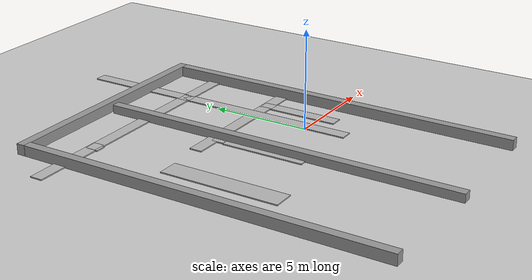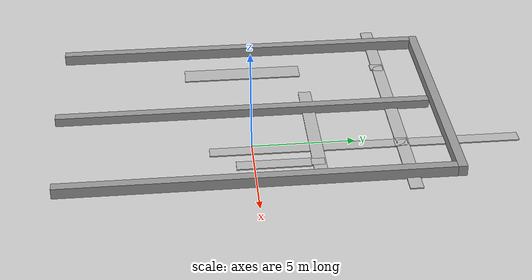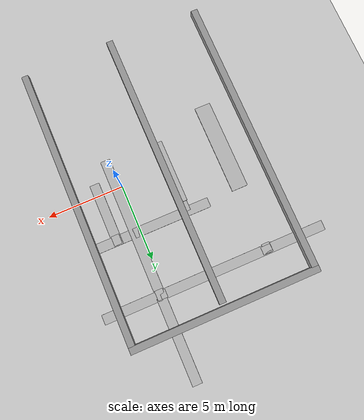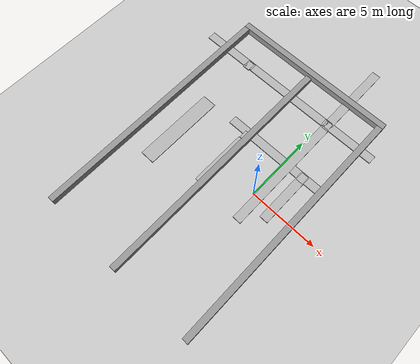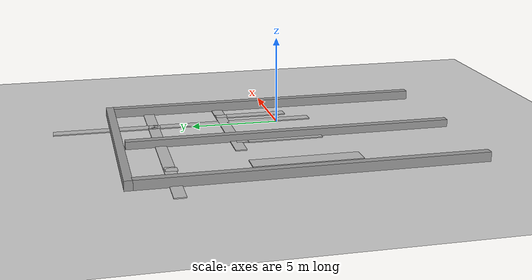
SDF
<sdf version="1.7">
 <world name="default">
  <model name="ground_plane">
   <static>1</static>
   <link name="link">
    <collision name="collision">
     <geometry><plane><normal>0 0 1</normal><size>100 100</size></plane></geometry>
     <surface>
      <contact><collide_bitmask>65535</collide_bitmask></contact>
      <friction><ode><mu>100</mu><mu2>50</mu2></ode></friction>
     </surface>
    </collision>
    <visual name="visual">
     <cast_shadows>0</cast_shadows>
     <geometry><plane><normal>0 0 1</normal><size>100 100</size></plane></geometry>
     <material>
      <script><uri>file://media/materials/scripts/gazebo.material</uri><name>Gazebo/Grey</name></script>
     </material>
    </visual>
   </link>
  </model>
  <model name="unit_box_wall">
   <link name="unit_box::link">
    <inertial>
     <mass>1</mass>
     <inertia>
      <ixx>0.166667</ixx>
      <ixy>0</ixy>
      <ixz>0</ixz>
      <iyy>0.166667</iyy>
      <iyz>0</iyz>
      <izz>0.166667</izz>
     </inertia>
    </inertial>
    <visual name="visual">
     <geometry><box><size>0.446113 18.5982 1</size></box></geometry>
     <material>
      <script><name>Gazebo/Grey</name><uri>file://media/materials/scripts/gazebo.material</uri></script>
      <shader type="pixel"/>
     </material>
    </visual>
    <collision name="collision">
     <geometry><box><size>0.446113 18.5982 1</size></box></geometry>
     <surface>
      <friction>
       <ode><mu>1</mu><mu2>1</mu2><fdir1>0 0 0</fdir1><slip1>0</slip1><slip2>0</slip2></ode>
       <torsional>
        <coefficient>1</coefficient>
        <patch_radius>0</patch_radius>
        <surface_radius>0</surface_radius>
        <use_patch_radius>1</use_patch_radius>
        <ode><slip>0</slip></ode>
       </torsional>
      </friction>
      <bounce><restitution_coefficient>0</restitution_coefficient><threshold>1e+06</threshold></bounce>
      <contact>
       <collide_without_contact>0</collide_without_contact>
       <collide_without_contact_bitmask>1</collide_without_contact_bitmask>
       <collide_bitmask>1</collide_bitmask>
       <ode>
        <soft_cfm>0</soft_cfm>
        <soft_erp>0.2</soft_erp>
        <kp>1e+13</kp>
        <kd>1</kd>
        <max_vel>0.01</max_vel>
        <min_depth>0</min_depth>
       </ode>
       <bullet>
        <split_impulse>1</split_impulse>
        <split_impulse_penetration_threshold>-0.01</split_impulse_penetration_threshold>
        <soft_cfm>0</soft_cfm>
        <soft_erp>0.2</soft_erp>
        <kp>1e+13</kp>
        <kd>1</kd>
       </bullet>
      </contact>
     </surface>
    </collision>
   </link>
   <static>1</static>
   <allow_auto_disable>0</allow_auto_disable>
   <pose>-9.02597 0.034785 0 0 -0 0</pose>
  </model>
  <model name="unit_box_wall_clone">
   <link name="unit_box::link">
    <inertial>
     <mass>1</mass>
     <inertia>
      <ixx>0.166667</ixx>
      <ixy>0</ixy>
      <ixz>0</ixz>
      <iyy>0.166667</iyy>
      <iyz>0</iyz>
      <izz>0.166667</izz>
     </inertia>
    </inertial>
    <visual name="visual">
     <geometry><box><size>0.446113 18.5982 1</size></box></geometry>
     <material>
      <script><name>Gazebo/Grey</name><uri>file://media/materials/scripts/gazebo.material</uri></script>
      <shader type="pixel"/>
     </material>
    </visual>
    <collision name="collision">
     <geometry><box><size>0.446113 18.5982 1</size></box></geometry>
     <surface>
      <friction>
       <ode><mu>1</mu><mu2>1</mu2><fdir1>0 0 0</fdir1><slip1>0</slip1><slip2>0</slip2></ode>
       <torsional>
        <coefficient>1</coefficient>
        <patch_radius>0</patch_radius>
        <surface_radius>0</surface_radius>
        <use_patch_radius>1</use_patch_radius>
        <ode><slip>0</slip></ode>
       </torsional>
      </friction>
      <bounce><restitution_coefficient>0</restitution_coefficient><threshold>1e+06</threshold></bounce>
      <contact>
       <collide_without_contact>0</collide_without_contact>
       <collide_without_contact_bitmask>1</collide_without_contact_bitmask>
       <collide_bitmask>1</collide_bitmask>
       <ode>
        <soft_cfm>0</soft_cfm>
        <soft_erp>0.2</soft_erp>
        <kp>1e+13</kp>
        <kd>1</kd>
        <max_vel>0.01</max_vel>
        <min_depth>0</min_depth>
       </ode>
       <bullet>
        <split_impulse>1</split_impulse>
        <split_impulse_penetration_threshold>-0.01</split_impulse_penetration_threshold>
        <soft_cfm>0</soft_cfm>
        <soft_erp>0.2</soft_erp>
        <kp>1e+13</kp>
        <kd>1</kd>
       </bullet>
      </contact>
     </surface>
    </collision>
   </link>
   <static>1</static>
   <allow_auto_disable>0</allow_auto_disable>
   <pose>3.13218 0.00569 0 0 -0 0</pose>
  </model>
  <model name="unit_box_wall_clone_0_clone">
   <link name="unit_box::link">
    <inertial>
     <mass>1</mass>
     <inertia>
      <ixx>0.166667</ixx>
      <ixy>0</ixy>
      <ixz>0</ixz>
      <iyy>0.166667</iyy>
      <iyz>0</iyz>
      <izz>0.166667</izz>
     </inertia>
    </inertial>
    <visual name="visual">
     <geometry><box><size>0.446113 12.605 1</size></box></geometry>
     <material>
      <script><name>Gazebo/Grey</name><uri>file://media/materials/scripts/gazebo.material</uri></script>
      <shader type="pixel"/>
     </material>
    </visual>
    <collision name="collision">
     <geometry><box><size>0.446113 12.605 1</size></box></geometry>
     <surface>
      <friction>
       <ode><mu>1</mu><mu2>1</mu2><fdir1>0 0 0</fdir1><slip1>0</slip1><slip2>0</slip2></ode>
       <torsional>
        <coefficient>1</coefficient>
        <patch_radius>0</patch_radius>
        <surface_radius>0</surface_radius>
        <use_patch_radius>1</use_patch_radius>
        <ode><slip>0</slip></ode>
       </torsional>
      </friction>
      <bounce><restitution_coefficient>0</restitution_coefficient><threshold>1e+06</threshold></bounce>
      <contact>
       <collide_without_contact>0</collide_without_contact>
       <collide_without_contact_bitmask>1</collide_without_contact_bitmask>
       <collide_bitmask>1</collide_bitmask>
       <ode>
        <soft_cfm>0</soft_cfm>
        <soft_erp>0.2</soft_erp>
        <kp>1e+13</kp>
        <kd>1</kd>
        <max_vel>0.01</max_vel>
        <min_depth>0</min_depth>
       </ode>
       <bullet>
        <split_impulse>1</split_impulse>
        <split_impulse_penetration_threshold>-0.01</split_impulse_penetration_threshold>
        <soft_cfm>0</soft_cfm>
        <soft_erp>0.2</soft_erp>
        <kp>1e+13</kp>
        <kd>1</kd>
       </bullet>
      </contact>
     </surface>
    </collision>
   </link>
   <static>1</static>
   <allow_auto_disable>0</allow_auto_disable>
   <pose>-2.94746 9.5173 0 0 0 -1.57124</pose>
  </model>
  <model name="unit_box_wall_0">
   <link name="unit_box::link">
    <inertial>
     <mass>1</mass>
     <inertia>
      <ixx>0.166667</ixx>
      <ixy>0</ixy>
      <ixz>0</ixz>
      <iyy>0.166667</iyy>
      <iyz>0</iyz>
      <izz>0.166667</izz>
     </inertia>
    </inertial>
    <visual name="visual">
     <geometry><box><size>0.446116 18.5982 0.999999</size></box></geometry>
     <material>
      <script><name>Gazebo/Grey</name><uri>file://media/materials/scripts/gazebo.material</uri></script>
      <shader type="pixel"/>
     </material>
    </visual>
    <collision name="collision">
     <geometry><box><size>0.446116 18.5982 0.999999</size></box></geometry>
     <surface>
      <friction>
       <ode><mu>1</mu><mu2>1</mu2><fdir1>0 0 0</fdir1><slip1>0</slip1><slip2>0</slip2></ode>
       <torsional>
        <coefficient>1</coefficient>
        <patch_radius>0</patch_radius>
        <surface_radius>0</surface_radius>
        <use_patch_radius>1</use_patch_radius>
        <ode><slip>0</slip></ode>
       </torsional>
      </friction>
      <bounce><restitution_coefficient>0</restitution_coefficient><threshold>1e+06</threshold></bounce>
      <contact>
       <collide_without_contact>0</collide_without_contact>
       <collide_without_contact_bitmask>1</collide_without_contact_bitmask>
       <collide_bitmask>1</collide_bitmask>
       <ode>
        <soft_cfm>0</soft_cfm>
        <soft_erp>0.2</soft_erp>
        <kp>1e+13</kp>
        <kd>1</kd>
        <max_vel>0.01</max_vel>
        <min_depth>0</min_depth>
       </ode>
       <bullet>
        <split_impulse>1</split_impulse>
        <split_impulse_penetration_threshold>-0.01</split_impulse_penetration_threshold>
        <soft_cfm>0</soft_cfm>
        <soft_erp>0.2</soft_erp>
        <kp>1e+13</kp>
        <kd>1</kd>
       </bullet>
      </contact>
     </surface>
    </collision>
   </link>
   <static>1</static>
   <allow_auto_disable>0</allow_auto_disable>
   <pose>-2.93005 -0.154884 -0.095815 0 -0 0</pose>
  </model>
  <model name="wallx">
   <link name="unit_box::link">
    <inertial>
     <mass>0.360824</mass>
     <inertia>
      <ixx>1.11244</ixx>
      <ixy>0</ixy>
      <ixz>0</ixz>
      <iyy>0.0643516</iyy>
      <iyz>0</iyz>
      <izz>1.11666</izz>
     </inertia>
    </inertial>
    <visual name="visual">
     <geometry><box><size>1.06778 5.99974 1</size></box></geometry>
     <material>
      <script>
       <uri>model://wallx/materials/scripts</uri>
       <uri>model://wallx/materials/textures/</uri>
       <name>sofaMat/Diffuse</name>
      </script>
      <shader type="pixel"/>
     </material>
    </visual>
    <collision name="collision">
     <geometry><box><size>1.06778 5.99974 1</size></box></geometry>
     <surface>
      <friction>
       <ode><mu>1</mu><mu2>1</mu2><fdir1>0 0 0</fdir1><slip1>0</slip1><slip2>0</slip2></ode>
       <torsional>
        <coefficient>1</coefficient>
        <patch_radius>0</patch_radius>
        <surface_radius>0</surface_radius>
        <use_patch_radius>1</use_patch_radius>
        <ode><slip>0</slip></ode>
       </torsional>
      </friction>
      <bounce><restitution_coefficient>0</restitution_coefficient><threshold>1e+06</threshold></bounce>
      <contact>
       <collide_without_contact>0</collide_without_contact>
       <collide_without_contact_bitmask>1</collide_without_contact_bitmask>
       <collide_bitmask>1</collide_bitmask>
       <ode>
        <soft_cfm>0</soft_cfm>
        <soft_erp>0.2</soft_erp>
        <kp>1e+13</kp>
        <kd>1</kd>
        <max_vel>0.01</max_vel>
        <min_depth>0</min_depth>
       </ode>
       <bullet>
        <split_impulse>1</split_impulse>
        <split_impulse_penetration_threshold>-0.01</split_impulse_penetration_threshold>
        <soft_cfm>0</soft_cfm>
        <soft_erp>0.2</soft_erp>
        <kp>1e+13</kp>
        <kd>1</kd>
       </bullet>
      </contact>
     </surface>
    </collision>
   </link>
   <static>1</static>
   <allow_auto_disable>0</allow_auto_disable>
   <pose>-6.89945 0.027812 -0.470978 0 -0 0</pose>
  </model>
  <model name="wallx_clone">
   <link name="unit_box::link">
    <inertial>
     <mass>0.360824</mass>
     <inertia>
      <ixx>1.11244</ixx>
      <ixy>0</ixy>
      <ixz>0</ixz>
      <iyy>0.0643516</iyy>
      <iyz>0</iyz>
      <izz>1.11666</izz>
     </inertia>
    </inertial>
    <visual name="visual">
     <geometry><box><size>0.636041 14.9462 1</size></box></geometry>
     <material>
      <script>
       <uri>model://wallx/materials/scripts</uri>
       <uri>model://wallx/materials/textures/</uri>
       <name>sofaMat/Diffuse</name>
      </script>
      <shader type="pixel"/>
     </material>
    </visual>
    <collision name="collision">
     <geometry><box><size>0.636041 14.9462 1</size></box></geometry>
     <surface>
      <friction>
       <ode><mu>1</mu><mu2>1</mu2><fdir1>0 0 0</fdir1><slip1>0</slip1><slip2>0</slip2></ode>
       <torsional>
        <coefficient>1</coefficient>
        <patch_radius>0</patch_radius>
        <surface_radius>0</surface_radius>
        <use_patch_radius>1</use_patch_radius>
        <ode><slip>0</slip></ode>
       </torsional>
      </friction>
      <bounce><restitution_coefficient>0</restitution_coefficient><threshold>1e+06</threshold></bounce>
      <contact>
       <collide_without_contact>0</collide_without_contact>
       <collide_without_contact_bitmask>1</collide_without_contact_bitmask>
       <collide_bitmask>1</collide_bitmask>
       <ode>
        <soft_cfm>0</soft_cfm>
        <soft_erp>0.2</soft_erp>
        <kp>1e+13</kp>
        <kd>1</kd>
        <max_vel>0.01</max_vel>
        <min_depth>0</min_depth>
       </ode>
       <bullet>
        <split_impulse>1</split_impulse>
        <split_impulse_penetration_threshold>-0.01</split_impulse_penetration_threshold>
        <soft_cfm>0</soft_cfm>
        <soft_erp>0.2</soft_erp>
        <kp>1e+13</kp>
        <kd>1</kd>
       </bullet>
      </contact>
     </surface>
    </collision>
   </link>
   <static>1</static>
   <allow_auto_disable>0</allow_auto_disable>
   <pose>-3.28974 7.23056 -0.470978 0 0 -1.57156</pose>
  </model>
  <model name="wallx_clone_0">
   <link name="unit_box::link">
    <inertial>
     <mass>0.360824</mass>
     <inertia>
      <ixx>1.11244</ixx>
      <ixy>0</ixy>
      <ixz>0</ixz>
      <iyy>0.0643516</iyy>
      <iyz>0</iyz>
      <izz>1.11666</izz>
     </inertia>
    </inertial>
    <visual name="visual">
     <geometry><box><size>0.63604 14.9462 1</size></box></geometry>
     <material>
      <script>
       <uri>model://wallx/materials/scripts</uri>
       <uri>model://wallx/materials/textures/</uri>
       <name>sofaMat/Diffuse</name>
      </script>
      <shader type="pixel"/>
     </material>
    </visual>
    <collision name="collision">
     <geometry><box><size>0.63604 14.9462 1</size></box></geometry>
     <surface>
      <friction>
       <ode><mu>1</mu><mu2>1</mu2><fdir1>0 0 0</fdir1><slip1>0</slip1><slip2>0</slip2></ode>
       <torsional>
        <coefficient>1</coefficient>
        <patch_radius>0</patch_radius>
        <surface_radius>0</surface_radius>
        <use_patch_radius>1</use_patch_radius>
        <ode><slip>0</slip></ode>
       </torsional>
      </friction>
      <bounce><restitution_coefficient>0</restitution_coefficient><threshold>1e+06</threshold></bounce>
      <contact>
       <collide_without_contact>0</collide_without_contact>
       <collide_without_contact_bitmask>1</collide_without_contact_bitmask>
       <collide_bitmask>1</collide_bitmask>
       <ode>
        <soft_cfm>0</soft_cfm>
        <soft_erp>0.2</soft_erp>
        <kp>1e+13</kp>
        <kd>1</kd>
        <max_vel>0.01</max_vel>
        <min_depth>0</min_depth>
       </ode>
       <bullet>
        <split_impulse>1</split_impulse>
        <split_impulse_penetration_threshold>-0.01</split_impulse_penetration_threshold>
        <soft_cfm>0</soft_cfm>
        <soft_erp>0.2</soft_erp>
        <kp>1e+13</kp>
        <kd>1</kd>
       </bullet>
      </contact>
     </surface>
    </collision>
   </link>
   <static>1</static>
   <allow_auto_disable>0</allow_auto_disable>
   <pose>0.388438 5.43553 -0.470978 0 -0 0</pose>
  </model>
  <model name="wallx_clone_clone">
   <link name="unit_box::link">
    <inertial>
     <mass>0.360824</mass>
     <inertia>
      <ixx>1.11244</ixx>
      <ixy>0</ixy>
      <ixz>0</ixz>
      <iyy>0.0643516</iyy>
      <iyz>0</iyz>
      <izz>1.11666</izz>
     </inertia>
    </inertial>
    <visual name="visual">
     <geometry><box><size>0.636041 7.8536 1</size></box></geometry>
     <material>
      <script>
       <uri>model://wallx/materials/scripts</uri>
       <uri>model://wallx/materials/textures/</uri>
       <name>sofaMat/Diffuse</name>
      </script>
      <shader type="pixel"/>
     </material>
    </visual>
    <collision name="collision">
     <geometry><box><size>0.636041 7.8536 1</size></box></geometry>
     <surface>
      <friction>
       <ode><mu>1</mu><mu2>1</mu2><fdir1>0 0 0</fdir1><slip1>0</slip1><slip2>0</slip2></ode>
       <torsional>
        <coefficient>1</coefficient>
        <patch_radius>0</patch_radius>
        <surface_radius>0</surface_radius>
        <use_patch_radius>1</use_patch_radius>
        <ode><slip>0</slip></ode>
       </torsional>
      </friction>
      <bounce><restitution_coefficient>0</restitution_coefficient><threshold>1e+06</threshold></bounce>
      <contact>
       <collide_without_contact>0</collide_without_contact>
       <collide_without_contact_bitmask>1</collide_without_contact_bitmask>
       <collide_bitmask>1</collide_bitmask>
       <ode>
        <soft_cfm>0</soft_cfm>
        <soft_erp>0.2</soft_erp>
        <kp>1e+13</kp>
        <kd>1</kd>
        <max_vel>0.01</max_vel>
        <min_depth>0</min_depth>
       </ode>
       <bullet>
        <split_impulse>1</split_impulse>
        <split_impulse_penetration_threshold>-0.01</split_impulse_penetration_threshold>
        <soft_cfm>0</soft_cfm>
        <soft_erp>0.2</soft_erp>
        <kp>1e+13</kp>
        <kd>1</kd>
       </bullet>
      </contact>
     </surface>
    </collision>
   </link>
   <static>1</static>
   <allow_auto_disable>0</allow_auto_disable>
   <pose>-0.781029 3.06675 -0.470978 0 0 -1.57156</pose>
  </model>
  <model name="wallx_clone_0_clone">
   <link name="unit_box::link">
    <inertial>
     <mass>0.360824</mass>
     <inertia>
      <ixx>1.11244</ixx>
      <ixy>0</ixy>
      <ixz>0</ixz>
      <iyy>0.0643516</iyy>
      <iyz>0</iyz>
      <izz>1.11666</izz>
     </inertia>
    </inertial>
    <visual name="visual">
     <geometry><box><size>0.63604 4.223 1</size></box></geometry>
     <material>
      <script>
       <uri>model://wallx/materials/scripts</uri>
       <uri>model://wallx/materials/textures/</uri>
       <name>sofaMat/Diffuse</name>
      </script>
      <shader type="pixel"/>
     </material>
    </visual>
    <collision name="collision">
     <geometry><box><size>0.63604 4.223 1</size></box></geometry>
     <surface>
      <friction>
       <ode><mu>1</mu><mu2>1</mu2><fdir1>0 0 0</fdir1><slip1>0</slip1><slip2>0</slip2></ode>
       <torsional>
        <coefficient>1</coefficient>
        <patch_radius>0</patch_radius>
        <surface_radius>0</surface_radius>
        <use_patch_radius>1</use_patch_radius>
        <ode><slip>0</slip></ode>
       </torsional>
      </friction>
      <bounce><restitution_coefficient>0</restitution_coefficient><threshold>1e+06</threshold></bounce>
      <contact>
       <collide_without_contact>0</collide_without_contact>
       <collide_without_contact_bitmask>1</collide_without_contact_bitmask>
       <collide_bitmask>1</collide_bitmask>
       <ode>
        <soft_cfm>0</soft_cfm>
        <soft_erp>0.2</soft_erp>
        <kp>1e+13</kp>
        <kd>1</kd>
        <max_vel>0.01</max_vel>
        <min_depth>0</min_depth>
       </ode>
       <bullet>
        <split_impulse>1</split_impulse>
        <split_impulse_penetration_threshold>-0.01</split_impulse_penetration_threshold>
        <soft_cfm>0</soft_cfm>
        <soft_erp>0.2</soft_erp>
        <kp>1e+13</kp>
        <kd>1</kd>
       </bullet>
      </contact>
     </surface>
    </collision>
   </link>
   <static>1</static>
   <allow_auto_disable>0</allow_auto_disable>
   <pose>-3.17294 0.282367 -0.470978 0 -0 0</pose>
  </model>
  <model name="wallx_clone_0_clone_0">
   <link name="unit_box::link">
    <inertial>
     <mass>0.360824</mass>
     <inertia>
      <ixx>1.11244</ixx>
      <ixy>0</ixy>
      <ixz>0</ixz>
      <iyy>0.0643516</iyy>
      <iyz>0</iyz>
      <izz>1.11666</izz>
     </inertia>
    </inertial>
    <visual name="visual">
     <geometry><box><size>0.63604 4.223 1</size></box></geometry>
     <material>
      <script>
       <uri>model://wallx/materials/scripts</uri>
       <uri>model://wallx/materials/textures/</uri>
       <name>sofaMat/Diffuse</name>
      </script>
      <shader type="pixel"/>
     </material>
    </visual>
    <collision name="collision">
     <geometry><box><size>0.63604 4.223 1</size></box></geometry>
     <surface>
      <friction>
       <ode><mu>1</mu><mu2>1</mu2><fdir1>0 0 0</fdir1><slip1>0</slip1><slip2>0</slip2></ode>
       <torsional>
        <coefficient>1</coefficient>
        <patch_radius>0</patch_radius>
        <surface_radius>0</surface_radius>
        <use_patch_radius>1</use_patch_radius>
        <ode><slip>0</slip></ode>
       </torsional>
      </friction>
      <bounce><restitution_coefficient>0</restitution_coefficient><threshold>1e+06</threshold></bounce>
      <contact>
       <collide_without_contact>0</collide_without_contact>
       <collide_without_contact_bitmask>1</collide_without_contact_bitmask>
       <collide_bitmask>1</collide_bitmask>
       <ode>
        <soft_cfm>0</soft_cfm>
        <soft_erp>0.2</soft_erp>
        <kp>1e+13</kp>
        <kd>1</kd>
        <max_vel>0.01</max_vel>
        <min_depth>0</min_depth>
       </ode>
       <bullet>
        <split_impulse>1</split_impulse>
        <split_impulse_penetration_threshold>-0.01</split_impulse_penetration_threshold>
        <soft_cfm>0</soft_cfm>
        <soft_erp>0.2</soft_erp>
        <kp>1e+13</kp>
        <kd>1</kd>
       </bullet>
      </contact>
     </surface>
    </collision>
   </link>
   <static>1</static>
   <allow_auto_disable>0</allow_auto_disable>
   <pose>1.6061 1.27034 -0.470978 0 -0 0</pose>
  </model>
  <model name="wally">
   <link name="unit_box::link">
    <inertial>
     <mass>0.360824</mass>
     <inertia>
      <ixx>1.11244</ixx>
      <ixy>0</ixy>
      <ixz>0</ixz>
      <iyy>0.0643516</iyy>
      <iyz>0</iyz>
      <izz>1.11666</izz>
     </inertia>
    </inertial>
    <visual name="visual">
     <geometry><box><size>0.526279 0.641563 0.121798</size></box></geometry>
     <material>
      <script>
       <uri>model://wally/materials/scripts</uri>
       <uri>model://wally/materials/textures/</uri>
       <name>sofaMa/Diffuse</name>
      </script>
      <shader type="pixel"/>
     </material>
    </visual>
    <collision name="collision">
     <geometry><box><size>0.526279 0.641563 0.121798</size></box></geometry>
     <surface>
      <friction>
       <ode><mu>1</mu><mu2>1</mu2><fdir1>0 0 0</fdir1><slip1>0</slip1><slip2>0</slip2></ode>
       <torsional>
        <coefficient>1</coefficient>
        <patch_radius>0</patch_radius>
        <surface_radius>0</surface_radius>
        <use_patch_radius>1</use_patch_radius>
        <ode><slip>0</slip></ode>
       </torsional>
      </friction>
      <bounce><restitution_coefficient>0</restitution_coefficient><threshold>1e+06</threshold></bounce>
      <contact>
       <collide_without_contact>0</collide_without_contact>
       <collide_without_contact_bitmask>1</collide_without_contact_bitmask>
       <collide_bitmask>1</collide_bitmask>
       <ode>
        <soft_cfm>0</soft_cfm>
        <soft_erp>0.2</soft_erp>
        <kp>1e+13</kp>
        <kd>1</kd>
        <max_vel>0.01</max_vel>
        <min_depth>0</min_depth>
       </ode>
       <bullet>
        <split_impulse>1</split_impulse>
        <split_impulse_penetration_threshold>-0.01</split_impulse_penetration_threshold>
        <soft_cfm>0</soft_cfm>
        <soft_erp>0.2</soft_erp>
        <kp>1e+13</kp>
        <kd>1</kd>
       </bullet>
      </contact>
     </surface>
    </collision>
   </link>
   <static>1</static>
   <allow_auto_disable>0</allow_auto_disable>
   <pose>-6.89957 7.1568 -0.031686 0 -0 0</pose>
  </model>
  <model name="wally_clone">
   <link name="unit_box::link">
    <inertial>
     <mass>0.360824</mass>
     <inertia>
      <ixx>1.11244</ixx>
      <ixy>0</ixy>
      <ixz>0</ixz>
      <iyy>0.0643516</iyy>
      <iyz>0</iyz>
      <izz>1.11666</izz>
     </inertia>
    </inertial>
    <visual name="visual">
     <geometry><box><size>0.526279 0.641561 0.121798</size></box></geometry>
     <material>
      <script>
       <uri>model://wally/materials/scripts</uri>
       <uri>model://wally/materials/textures/</uri>
       <name>sofaMa/Diffuse</name>
      </script>
      <shader type="pixel"/>
     </material>
    </visual>
    <collision name="collision">
     <geometry><box><size>0.526279 0.641561 0.121798</size></box></geometry>
     <surface>
      <friction>
       <ode><mu>1</mu><mu2>1</mu2><fdir1>0 0 0</fdir1><slip1>0</slip1><slip2>0</slip2></ode>
       <torsional>
        <coefficient>1</coefficient>
        <patch_radius>0</patch_radius>
        <surface_radius>0</surface_radius>
        <use_patch_radius>1</use_patch_radius>
        <ode><slip>0</slip></ode>
       </torsional>
      </friction>
      <bounce><restitution_coefficient>0</restitution_coefficient><threshold>1e+06</threshold></bounce>
      <contact>
       <collide_without_contact>0</collide_without_contact>
       <collide_without_contact_bitmask>1</collide_without_contact_bitmask>
       <collide_bitmask>1</collide_bitmask>
       <ode>
        <soft_cfm>0</soft_cfm>
        <soft_erp>0.2</soft_erp>
        <kp>1e+13</kp>
        <kd>1</kd>
        <max_vel>0.01</max_vel>
        <min_depth>0</min_depth>
       </ode>
       <bullet>
        <split_impulse>1</split_impulse>
        <split_impulse_penetration_threshold>-0.01</split_impulse_penetration_threshold>
        <soft_cfm>0</soft_cfm>
        <soft_erp>0.2</soft_erp>
        <kp>1e+13</kp>
        <kd>1</kd>
       </bullet>
      </contact>
     </surface>
    </collision>
   </link>
   <static>1</static>
   <allow_auto_disable>0</allow_auto_disable>
   <pose>0.389632 7.16957 -0.031686 0 -0 0</pose>
  </model>
  <model name="wally_clone_0">
   <link name="unit_box::link">
    <inertial>
     <mass>0.360824</mass>
     <inertia>
      <ixx>1.11244</ixx>
      <ixy>0</ixy>
      <ixz>0</ixz>
      <iyy>0.0643516</iyy>
      <iyz>0</iyz>
      <izz>1.11666</izz>
     </inertia>
    </inertial>
    <visual name="visual">
     <geometry><box><size>0.526279 0.641561 0.121798</size></box></geometry>
     <material>
      <script>
       <uri>model://wally/materials/scripts</uri>
       <uri>model://wally/materials/textures/</uri>
       <name>sofaMa/Diffuse</name>
      </script>
      <shader type="pixel"/>
     </material>
    </visual>
    <collision name="collision">
     <geometry><box><size>0.526279 0.641561 0.121798</size></box></geometry>
     <surface>
      <friction>
       <ode><mu>1</mu><mu2>1</mu2><fdir1>0 0 0</fdir1><slip1>0</slip1><slip2>0</slip2></ode>
       <torsional>
        <coefficient>1</coefficient>
        <patch_radius>0</patch_radius>
        <surface_radius>0</surface_radius>
        <use_patch_radius>1</use_patch_radius>
        <ode><slip>0</slip></ode>
       </torsional>
      </friction>
      <bounce><restitution_coefficient>0</restitution_coefficient><threshold>1e+06</threshold></bounce>
      <contact>
       <collide_without_contact>0</collide_without_contact>
       <collide_without_contact_bitmask>1</collide_without_contact_bitmask>
       <collide_bitmask>1</collide_bitmask>
       <ode>
        <soft_cfm>0</soft_cfm>
        <soft_erp>0.2</soft_erp>
        <kp>1e+13</kp>
        <kd>1</kd>
        <max_vel>0.01</max_vel>
        <min_depth>0</min_depth>
       </ode>
       <bullet>
        <split_impulse>1</split_impulse>
        <split_impulse_penetration_threshold>-0.01</split_impulse_penetration_threshold>
        <soft_cfm>0</soft_cfm>
        <soft_erp>0.2</soft_erp>
        <kp>1e+13</kp>
        <kd>1</kd>
       </bullet>
      </contact>
     </surface>
    </collision>
   </link>
   <static>1</static>
   <allow_auto_disable>0</allow_auto_disable>
   <pose>-3.17497 2.73518 -0.031686 0 -0 0</pose>
  </model>
  <model name="wally_clone_1">
   <link name="unit_box::link">
    <inertial>
     <mass>0.360824</mass>
     <inertia>
      <ixx>1.11244</ixx>
      <ixy>0</ixy>
      <ixz>0</ixz>
      <iyy>0.0643516</iyy>
      <iyz>0</iyz>
      <izz>1.11666</izz>
     </inertia>
    </inertial>
    <visual name="visual">
     <geometry><box><size>0.526279 0.641561 0.121798</size></box></geometry>
     <material>
      <script>
       <uri>model://wally/materials/scripts</uri>
       <uri>model://wally/materials/textures/</uri>
       <name>sofaMa/Diffuse</name>
      </script>
      <shader type="pixel"/>
     </material>
    </visual>
    <collision name="collision">
     <geometry><box><size>0.526279 0.641561 0.121798</size></box></geometry>
     <surface>
      <friction>
       <ode><mu>1</mu><mu2>1</mu2><fdir1>0 0 0</fdir1><slip1>0</slip1><slip2>0</slip2></ode>
       <torsional>
        <coefficient>1</coefficient>
        <patch_radius>0</patch_radius>
        <surface_radius>0</surface_radius>
        <use_patch_radius>1</use_patch_radius>
        <ode><slip>0</slip></ode>
       </torsional>
      </friction>
      <bounce><restitution_coefficient>0</restitution_coefficient><threshold>1e+06</threshold></bounce>
      <contact>
       <collide_without_contact>0</collide_without_contact>
       <collide_without_contact_bitmask>1</collide_without_contact_bitmask>
       <collide_bitmask>1</collide_bitmask>
       <ode>
        <soft_cfm>0</soft_cfm>
        <soft_erp>0.2</soft_erp>
        <kp>1e+13</kp>
        <kd>1</kd>
        <max_vel>0.01</max_vel>
        <min_depth>0</min_depth>
       </ode>
       <bullet>
        <split_impulse>1</split_impulse>
        <split_impulse_penetration_threshold>-0.01</split_impulse_penetration_threshold>
        <soft_cfm>0</soft_cfm>
        <soft_erp>0.2</soft_erp>
        <kp>1e+13</kp>
        <kd>1</kd>
       </bullet>
      </contact>
     </surface>
    </collision>
   </link>
   <static>1</static>
   <allow_auto_disable>0</allow_auto_disable>
   <pose>1.61074 3.00602 -0.031686 0 -0 0</pose>
  </model>
  <model name="wally_clone_4_clone">
   <link name="unit_box::link">
    <inertial>
     <mass>0.360824</mass>
     <inertia>
      <ixx>1.11244</ixx>
      <ixy>0</ixy>
      <ixz>0</ixz>
      <iyy>0.0643516</iyy>
      <iyz>0</iyz>
      <izz>1.11666</izz>
     </inertia>
    </inertial>
    <visual name="visual">
     <geometry><box><size>0.526279 0.641561 0.121798</size></box></geometry>
     <material>
      <script>
       <uri>model://wally/materials/scripts</uri>
       <uri>model://wally/materials/textures/</uri>
       <name>sofaMa/Diffuse</name>
      </script>
      <shader type="pixel"/>
     </material>
    </visual>
    <collision name="collision">
     <geometry><box><size>0.526279 0.641561 0.121798</size></box></geometry>
     <surface>
      <friction>
       <ode><mu>1</mu><mu2>1</mu2><fdir1>0 0 0</fdir1><slip1>0</slip1><slip2>0</slip2></ode>
       <torsional>
        <coefficient>1</coefficient>
        <patch_radius>0</patch_radius>
        <surface_radius>0</surface_radius>
        <use_patch_radius>1</use_patch_radius>
        <ode><slip>0</slip></ode>
       </torsional>
      </friction>
      <bounce><restitution_coefficient>0</restitution_coefficient><threshold>1e+06</threshold></bounce>
      <contact>
       <collide_without_contact>0</collide_without_contact>
       <collide_without_contact_bitmask>1</collide_without_contact_bitmask>
       <collide_bitmask>1</collide_bitmask>
       <ode>
        <soft_cfm>0</soft_cfm>
        <soft_erp>0.2</soft_erp>
        <kp>1e+13</kp>
        <kd>1</kd>
        <max_vel>0.01</max_vel>
        <min_depth>0</min_depth>
       </ode>
       <bullet>
        <split_impulse>1</split_impulse>
        <split_impulse_penetration_threshold>-0.01</split_impulse_penetration_threshold>
        <soft_cfm>0</soft_cfm>
        <soft_erp>0.2</soft_erp>
        <kp>1e+13</kp>
        <kd>1</kd>
       </bullet>
      </contact>
     </surface>
    </collision>
   </link>
   <static>1</static>
   <allow_auto_disable>0</allow_auto_disable>
   <pose>-6.83257 7.23654 -0.031686 0 0 -1.56745</pose>
  </model>
  <model name="wally_clone_4_clone_0">
   <link name="unit_box::link">
    <inertial>
     <mass>0.360824</mass>
     <inertia>
      <ixx>1.11244</ixx>
      <ixy>0</ixy>
      <ixz>0</ixz>
      <iyy>0.0643516</iyy>
      <iyz>0</iyz>
      <izz>1.11666</izz>
     </inertia>
    </inertial>
    <visual name="visual">
     <geometry><box><size>0.526279 0.641561 0.121798</size></box></geometry>
     <material>
      <script>
       <uri>model://wally/materials/scripts</uri>
       <uri>model://wally/materials/textures/</uri>
       <name>sofaMa/Diffuse</name>
      </script>
      <shader type="pixel"/>
     </material>
    </visual>
    <collision name="collision">
     <geometry><box><size>0.526279 0.641561 0.121798</size></box></geometry>
     <surface>
      <friction>
       <ode><mu>1</mu><mu2>1</mu2><fdir1>0 0 0</fdir1><slip1>0</slip1><slip2>0</slip2></ode>
       <torsional>
        <coefficient>1</coefficient>
        <patch_radius>0</patch_radius>
        <surface_radius>0</surface_radius>
        <use_patch_radius>1</use_patch_radius>
        <ode><slip>0</slip></ode>
       </torsional>
      </friction>
      <bounce><restitution_coefficient>0</restitution_coefficient><threshold>1e+06</threshold></bounce>
      <contact>
       <collide_without_contact>0</collide_without_contact>
       <collide_without_contact_bitmask>1</collide_without_contact_bitmask>
       <collide_bitmask>1</collide_bitmask>
       <ode>
        <soft_cfm>0</soft_cfm>
        <soft_erp>0.2</soft_erp>
        <kp>1e+13</kp>
        <kd>1</kd>
        <max_vel>0.01</max_vel>
        <min_depth>0</min_depth>
       </ode>
       <bullet>
        <split_impulse>1</split_impulse>
        <split_impulse_penetration_threshold>-0.01</split_impulse_penetration_threshold>
        <soft_cfm>0</soft_cfm>
        <soft_erp>0.2</soft_erp>
        <kp>1e+13</kp>
        <kd>1</kd>
       </bullet>
      </contact>
     </surface>
    </collision>
   </link>
   <static>1</static>
   <allow_auto_disable>0</allow_auto_disable>
   <pose>0.320438 7.22721 -0.031686 0 0 -1.56745</pose>
  </model>
 </world>
</sdf>
